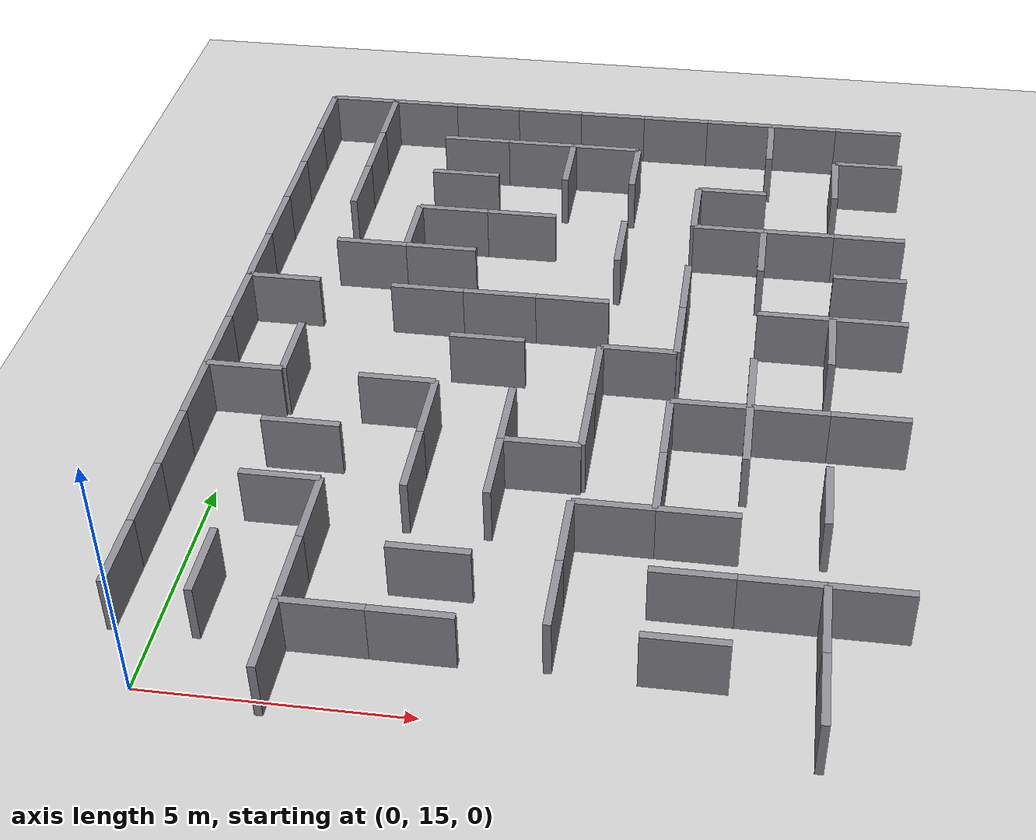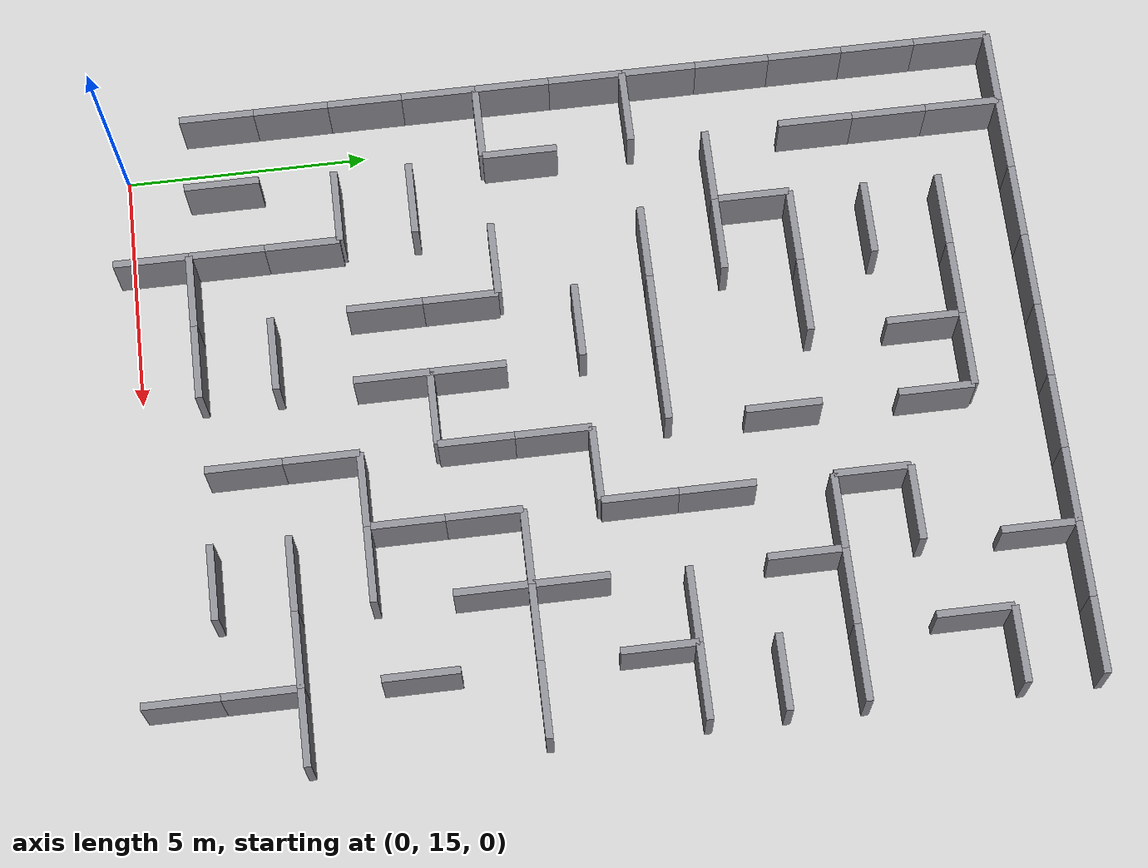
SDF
<sdf version="1.10">
 <world name="sar_maze_generated">
  <model name="ground_plane">
   <static>true</static>
   <link name="link">
    <collision name="collision">
     <geometry><plane><normal>0 0 1</normal><size>51.1 51.1</size></plane></geometry>
    </collision>
    <visual name="visual">
     <geometry><plane><normal>0 0 1</normal><size>51.1 51.1</size></plane></geometry>
     <material><ambient>0.8 0.8 0.8 1</ambient><diffuse>0.8 0.8 0.8 1</diffuse></material>
    </visual>
    <pose>16.27 16.27 0 0 0 0</pose>
    <inertial>
     <mass>1</mass>
     <inertia><ixx>1</ixx><ixy>0</ixy><ixz>0</ixz><iyy>1</iyy><iyz>0</iyz><izz>1</izz></inertia>
    </inertial>
   </link>
  </model>
  <model name="maze_structure">
   <static>true</static>
   <link name="wall_v_231">
    <static>true</static>
    <pose>2.3250 15.5000 0.6000 0 0 0</pose>
    <collision name="wall_v_231_collision">
     <geometry><box><size>0.1500 1.5500 1.2000</size></box></geometry>
    </collision>
    <visual name="wall_v_231_visual">
     <geometry><box><size>0.1500 1.5500 1.2000</size></box></geometry>
     <material><ambient>0.55 0.55 0.58 1</ambient><diffuse>0.55 0.55 0.58 1</diffuse></material>
    </visual>
   </link>
   <link name="wall_h_232">
    <static>true</static>
    <pose>3.1000 16.2750 0.6000 0 0 0</pose>
    <collision name="wall_h_232_collision">
     <geometry><box><size>1.5500 0.1500 1.2000</size></box></geometry>
    </collision>
    <visual name="wall_h_232_visual">
     <geometry><box><size>1.5500 0.1500 1.2000</size></box></geometry>
     <material><ambient>0.55 0.55 0.58 1</ambient><diffuse>0.55 0.55 0.58 1</diffuse></material>
    </visual>
   </link>
   <link name="wall_h_233">
    <static>true</static>
    <pose>4.6500 16.2750 0.6000 0 0 0</pose>
    <collision name="wall_h_233_collision">
     <geometry><box><size>1.5500 0.1500 1.2000</size></box></geometry>
    </collision>
    <visual name="wall_h_233_visual">
     <geometry><box><size>1.5500 0.1500 1.2000</size></box></geometry>
     <material><ambient>0.55 0.55 0.58 1</ambient><diffuse>0.55 0.55 0.58 1</diffuse></material>
    </visual>
   </link>
   <link name="wall_h_234">
    <static>true</static>
    <pose>9.3000 16.2750 0.6000 0 0 0</pose>
    <collision name="wall_h_234_collision">
     <geometry><box><size>1.5500 0.1500 1.2000</size></box></geometry>
    </collision>
    <visual name="wall_h_234_visual">
     <geometry><box><size>1.5500 0.1500 1.2000</size></box></geometry>
     <material><ambient>0.55 0.55 0.58 1</ambient><diffuse>0.55 0.55 0.58 1</diffuse></material>
    </visual>
   </link>
   <link name="wall_v_235">
    <static>true</static>
    <pose>11.6250 15.5000 0.6000 0 0 0</pose>
    <collision name="wall_v_235_collision">
     <geometry><box><size>0.1500 1.5500 1.2000</size></box></geometry>
    </collision>
    <visual name="wall_v_235_visual">
     <geometry><box><size>0.1500 1.5500 1.2000</size></box></geometry>
     <material><ambient>0.55 0.55 0.58 1</ambient><diffuse>0.55 0.55 0.58 1</diffuse></material>
    </visual>
   </link>
   <link name="wall_v_248">
    <static>true</static>
    <pose>0.7750 17.0500 0.6000 0 0 0</pose>
    <collision name="wall_v_248_collision">
     <geometry><box><size>0.1500 1.5500 1.2000</size></box></geometry>
    </collision>
    <visual name="wall_v_248_visual">
     <geometry><box><size>0.1500 1.5500 1.2000</size></box></geometry>
     <material><ambient>0.55 0.55 0.58 1</ambient><diffuse>0.55 0.55 0.58 1</diffuse></material>
    </visual>
   </link>
   <link name="wall_boundary_v_249">
    <static>true</static>
    <pose>-0.7750 17.0500 0.6000 0 0 0</pose>
    <collision name="wall_boundary_v_249_collision">
     <geometry><box><size>0.1500 1.5500 1.2000</size></box></geometry>
    </collision>
    <visual name="wall_boundary_v_249_visual">
     <geometry><box><size>0.1500 1.5500 1.2000</size></box></geometry>
     <material><ambient>0.55 0.55 0.58 1</ambient><diffuse>0.55 0.55 0.58 1</diffuse></material>
    </visual>
   </link>
   <link name="wall_v_250">
    <static>true</static>
    <pose>2.3250 17.0500 0.6000 0 0 0</pose>
    <collision name="wall_v_250_collision">
     <geometry><box><size>0.1500 1.5500 1.2000</size></box></geometry>
    </collision>
    <visual name="wall_v_250_visual">
     <geometry><box><size>0.1500 1.5500 1.2000</size></box></geometry>
     <material><ambient>0.55 0.55 0.58 1</ambient><diffuse>0.55 0.55 0.58 1</diffuse></material>
    </visual>
   </link>
   <link name="wall_h_251">
    <static>true</static>
    <pose>4.6500 17.8250 0.6000 0 0 0</pose>
    <collision name="wall_h_251_collision">
     <geometry><box><size>1.5500 0.1500 1.2000</size></box></geometry>
    </collision>
    <visual name="wall_h_251_visual">
     <geometry><box><size>1.5500 0.1500 1.2000</size></box></geometry>
     <material><ambient>0.55 0.55 0.58 1</ambient><diffuse>0.55 0.55 0.58 1</diffuse></material>
    </visual>
   </link>
   <link name="wall_v_252">
    <static>true</static>
    <pose>6.9750 17.0500 0.6000 0 0 0</pose>
    <collision name="wall_v_252_collision">
     <geometry><box><size>0.1500 1.5500 1.2000</size></box></geometry>
    </collision>
    <visual name="wall_v_252_visual">
     <geometry><box><size>0.1500 1.5500 1.2000</size></box></geometry>
     <material><ambient>0.55 0.55 0.58 1</ambient><diffuse>0.55 0.55 0.58 1</diffuse></material>
    </visual>
   </link>
   <link name="wall_h_253">
    <static>true</static>
    <pose>9.3000 17.8250 0.6000 0 0 0</pose>
    <collision name="wall_h_253_collision">
     <geometry><box><size>1.5500 0.1500 1.2000</size></box></geometry>
    </collision>
    <visual name="wall_h_253_visual">
     <geometry><box><size>1.5500 0.1500 1.2000</size></box></geometry>
     <material><ambient>0.55 0.55 0.58 1</ambient><diffuse>0.55 0.55 0.58 1</diffuse></material>
    </visual>
   </link>
   <link name="wall_h_254">
    <static>true</static>
    <pose>10.8500 17.8250 0.6000 0 0 0</pose>
    <collision name="wall_h_254_collision">
     <geometry><box><size>1.5500 0.1500 1.2000</size></box></geometry>
    </collision>
    <visual name="wall_h_254_visual">
     <geometry><box><size>1.5500 0.1500 1.2000</size></box></geometry>
     <material><ambient>0.55 0.55 0.58 1</ambient><diffuse>0.55 0.55 0.58 1</diffuse></material>
    </visual>
   </link>
   <link name="wall_v_255">
    <static>true</static>
    <pose>11.6250 17.0500 0.6000 0 0 0</pose>
    <collision name="wall_v_255_collision">
     <geometry><box><size>0.1500 1.5500 1.2000</size></box></geometry>
    </collision>
    <visual name="wall_v_255_visual">
     <geometry><box><size>0.1500 1.5500 1.2000</size></box></geometry>
     <material><ambient>0.55 0.55 0.58 1</ambient><diffuse>0.55 0.55 0.58 1</diffuse></material>
    </visual>
   </link>
   <link name="wall_h_256">
    <static>true</static>
    <pose>12.4000 17.8250 0.6000 0 0 0</pose>
    <collision name="wall_h_256_collision">
     <geometry><box><size>1.5500 0.1500 1.2000</size></box></geometry>
    </collision>
    <visual name="wall_h_256_visual">
     <geometry><box><size>1.5500 0.1500 1.2000</size></box></geometry>
     <material><ambient>0.55 0.55 0.58 1</ambient><diffuse>0.55 0.55 0.58 1</diffuse></material>
    </visual>
   </link>
   <link name="wall_boundary_v_266">
    <static>true</static>
    <pose>-0.7750 18.6000 0.6000 0 0 0</pose>
    <collision name="wall_boundary_v_266_collision">
     <geometry><box><size>0.1500 1.5500 1.2000</size></box></geometry>
    </collision>
    <visual name="wall_boundary_v_266_visual">
     <geometry><box><size>0.1500 1.5500 1.2000</size></box></geometry>
     <material><ambient>0.55 0.55 0.58 1</ambient><diffuse>0.55 0.55 0.58 1</diffuse></material>
    </visual>
   </link>
   <link name="wall_h_267">
    <static>true</static>
    <pose>1.5500 19.3750 0.6000 0 0 0</pose>
    <collision name="wall_h_267_collision">
     <geometry><box><size>1.5500 0.1500 1.2000</size></box></geometry>
    </collision>
    <visual name="wall_h_267_visual">
     <geometry><box><size>1.5500 0.1500 1.2000</size></box></geometry>
     <material><ambient>0.55 0.55 0.58 1</ambient><diffuse>0.55 0.55 0.58 1</diffuse></material>
    </visual>
   </link>
   <link name="wall_v_268">
    <static>true</static>
    <pose>2.3250 18.6000 0.6000 0 0 0</pose>
    <collision name="wall_v_268_collision">
     <geometry><box><size>0.1500 1.5500 1.2000</size></box></geometry>
    </collision>
    <visual name="wall_v_268_visual">
     <geometry><box><size>0.1500 1.5500 1.2000</size></box></geometry>
     <material><ambient>0.55 0.55 0.58 1</ambient><diffuse>0.55 0.55 0.58 1</diffuse></material>
    </visual>
   </link>
   <link name="wall_v_269">
    <static>true</static>
    <pose>6.9750 18.6000 0.6000 0 0 0</pose>
    <collision name="wall_v_269_collision">
     <geometry><box><size>0.1500 1.5500 1.2000</size></box></geometry>
    </collision>
    <visual name="wall_v_269_visual">
     <geometry><box><size>0.1500 1.5500 1.2000</size></box></geometry>
     <material><ambient>0.55 0.55 0.58 1</ambient><diffuse>0.55 0.55 0.58 1</diffuse></material>
    </visual>
   </link>
   <link name="wall_h_270">
    <static>true</static>
    <pose>7.7500 19.3750 0.6000 0 0 0</pose>
    <collision name="wall_h_270_collision">
     <geometry><box><size>1.5500 0.1500 1.2000</size></box></geometry>
    </collision>
    <visual name="wall_h_270_visual">
     <geometry><box><size>1.5500 0.1500 1.2000</size></box></geometry>
     <material><ambient>0.55 0.55 0.58 1</ambient><diffuse>0.55 0.55 0.58 1</diffuse></material>
    </visual>
   </link>
   <link name="wall_h_271">
    <static>true</static>
    <pose>9.3000 19.3750 0.6000 0 0 0</pose>
    <collision name="wall_h_271_collision">
     <geometry><box><size>1.5500 0.1500 1.2000</size></box></geometry>
    </collision>
    <visual name="wall_h_271_visual">
     <geometry><box><size>1.5500 0.1500 1.2000</size></box></geometry>
     <material><ambient>0.55 0.55 0.58 1</ambient><diffuse>0.55 0.55 0.58 1</diffuse></material>
    </visual>
   </link>
   <link name="wall_boundary_v_284">
    <static>true</static>
    <pose>-0.7750 20.1500 0.6000 0 0 0</pose>
    <collision name="wall_boundary_v_284_collision">
     <geometry><box><size>0.1500 1.5500 1.2000</size></box></geometry>
    </collision>
    <visual name="wall_boundary_v_284_visual">
     <geometry><box><size>0.1500 1.5500 1.2000</size></box></geometry>
     <material><ambient>0.55 0.55 0.58 1</ambient><diffuse>0.55 0.55 0.58 1</diffuse></material>
    </visual>
   </link>
   <link name="wall_h_285">
    <static>true</static>
    <pose>1.5500 20.9250 0.6000 0 0 0</pose>
    <collision name="wall_h_285_collision">
     <geometry><box><size>1.5500 0.1500 1.2000</size></box></geometry>
    </collision>
    <visual name="wall_h_285_visual">
     <geometry><box><size>1.5500 0.1500 1.2000</size></box></geometry>
     <material><ambient>0.55 0.55 0.58 1</ambient><diffuse>0.55 0.55 0.58 1</diffuse></material>
    </visual>
   </link>
   <link name="wall_v_286">
    <static>true</static>
    <pose>3.8750 20.1500 0.6000 0 0 0</pose>
    <collision name="wall_v_286_collision">
     <geometry><box><size>0.1500 1.5500 1.2000</size></box></geometry>
    </collision>
    <visual name="wall_v_286_visual">
     <geometry><box><size>0.1500 1.5500 1.2000</size></box></geometry>
     <material><ambient>0.55 0.55 0.58 1</ambient><diffuse>0.55 0.55 0.58 1</diffuse></material>
    </visual>
   </link>
   <link name="wall_v_287">
    <static>true</static>
    <pose>5.4250 20.1500 0.6000 0 0 0</pose>
    <collision name="wall_v_287_collision">
     <geometry><box><size>0.1500 1.5500 1.2000</size></box></geometry>
    </collision>
    <visual name="wall_v_287_visual">
     <geometry><box><size>0.1500 1.5500 1.2000</size></box></geometry>
     <material><ambient>0.55 0.55 0.58 1</ambient><diffuse>0.55 0.55 0.58 1</diffuse></material>
    </visual>
   </link>
   <link name="wall_h_288">
    <static>true</static>
    <pose>6.2000 20.9250 0.6000 0 0 0</pose>
    <collision name="wall_h_288_collision">
     <geometry><box><size>1.5500 0.1500 1.2000</size></box></geometry>
    </collision>
    <visual name="wall_h_288_visual">
     <geometry><box><size>1.5500 0.1500 1.2000</size></box></geometry>
     <material><ambient>0.55 0.55 0.58 1</ambient><diffuse>0.55 0.55 0.58 1</diffuse></material>
    </visual>
   </link>
   <link name="wall_v_289">
    <static>true</static>
    <pose>8.5250 20.1500 0.6000 0 0 0</pose>
    <collision name="wall_v_289_collision">
     <geometry><box><size>0.1500 1.5500 1.2000</size></box></geometry>
    </collision>
    <visual name="wall_v_289_visual">
     <geometry><box><size>0.1500 1.5500 1.2000</size></box></geometry>
     <material><ambient>0.55 0.55 0.58 1</ambient><diffuse>0.55 0.55 0.58 1</diffuse></material>
    </visual>
   </link>
   <link name="wall_v_290">
    <static>true</static>
    <pose>11.6250 20.1500 0.6000 0 0 0</pose>
    <collision name="wall_v_290_collision">
     <geometry><box><size>0.1500 1.5500 1.2000</size></box></geometry>
    </collision>
    <visual name="wall_v_290_visual">
     <geometry><box><size>0.1500 1.5500 1.2000</size></box></geometry>
     <material><ambient>0.55 0.55 0.58 1</ambient><diffuse>0.55 0.55 0.58 1</diffuse></material>
    </visual>
   </link>
   <link name="wall_h_304">
    <static>true</static>
    <pose>0.0000 22.4750 0.6000 0 0 0</pose>
    <collision name="wall_h_304_collision">
     <geometry><box><size>1.5500 0.1500 1.2000</size></box></geometry>
    </collision>
    <visual name="wall_h_304_visual">
     <geometry><box><size>1.5500 0.1500 1.2000</size></box></geometry>
     <material><ambient>0.55 0.55 0.58 1</ambient><diffuse>0.55 0.55 0.58 1</diffuse></material>
    </visual>
   </link>
   <link name="wall_boundary_v_305">
    <static>true</static>
    <pose>-0.7750 21.7000 0.6000 0 0 0</pose>
    <collision name="wall_boundary_v_305_collision">
     <geometry><box><size>0.1500 1.5500 1.2000</size></box></geometry>
    </collision>
    <visual name="wall_boundary_v_305_visual">
     <geometry><box><size>0.1500 1.5500 1.2000</size></box></geometry>
     <material><ambient>0.55 0.55 0.58 1</ambient><diffuse>0.55 0.55 0.58 1</diffuse></material>
    </visual>
   </link>
   <link name="wall_h_306">
    <static>true</static>
    <pose>3.1000 22.4750 0.6000 0 0 0</pose>
    <collision name="wall_h_306_collision">
     <geometry><box><size>1.5500 0.1500 1.2000</size></box></geometry>
    </collision>
    <visual name="wall_h_306_visual">
     <geometry><box><size>1.5500 0.1500 1.2000</size></box></geometry>
     <material><ambient>0.55 0.55 0.58 1</ambient><diffuse>0.55 0.55 0.58 1</diffuse></material>
    </visual>
   </link>
   <link name="wall_v_307">
    <static>true</static>
    <pose>3.8750 21.7000 0.6000 0 0 0</pose>
    <collision name="wall_v_307_collision">
     <geometry><box><size>0.1500 1.5500 1.2000</size></box></geometry>
    </collision>
    <visual name="wall_v_307_visual">
     <geometry><box><size>0.1500 1.5500 1.2000</size></box></geometry>
     <material><ambient>0.55 0.55 0.58 1</ambient><diffuse>0.55 0.55 0.58 1</diffuse></material>
    </visual>
   </link>
   <link name="wall_v_308">
    <static>true</static>
    <pose>5.4250 21.7000 0.6000 0 0 0</pose>
    <collision name="wall_v_308_collision">
     <geometry><box><size>0.1500 1.5500 1.2000</size></box></geometry>
    </collision>
    <visual name="wall_v_308_visual">
     <geometry><box><size>0.1500 1.5500 1.2000</size></box></geometry>
     <material><ambient>0.55 0.55 0.58 1</ambient><diffuse>0.55 0.55 0.58 1</diffuse></material>
    </visual>
   </link>
   <link name="wall_v_309">
    <static>true</static>
    <pose>6.9750 21.7000 0.6000 0 0 0</pose>
    <collision name="wall_v_309_collision">
     <geometry><box><size>0.1500 1.5500 1.2000</size></box></geometry>
    </collision>
    <visual name="wall_v_309_visual">
     <geometry><box><size>0.1500 1.5500 1.2000</size></box></geometry>
     <material><ambient>0.55 0.55 0.58 1</ambient><diffuse>0.55 0.55 0.58 1</diffuse></material>
    </visual>
   </link>
   <link name="wall_v_310">
    <static>true</static>
    <pose>8.5250 21.7000 0.6000 0 0 0</pose>
    <collision name="wall_v_310_collision">
     <geometry><box><size>0.1500 1.5500 1.2000</size></box></geometry>
    </collision>
    <visual name="wall_v_310_visual">
     <geometry><box><size>0.1500 1.5500 1.2000</size></box></geometry>
     <material><ambient>0.55 0.55 0.58 1</ambient><diffuse>0.55 0.55 0.58 1</diffuse></material>
    </visual>
   </link>
   <link name="wall_h_311">
    <static>true</static>
    <pose>9.3000 22.4750 0.6000 0 0 0</pose>
    <collision name="wall_h_311_collision">
     <geometry><box><size>1.5500 0.1500 1.2000</size></box></geometry>
    </collision>
    <visual name="wall_h_311_visual">
     <geometry><box><size>1.5500 0.1500 1.2000</size></box></geometry>
     <material><ambient>0.55 0.55 0.58 1</ambient><diffuse>0.55 0.55 0.58 1</diffuse></material>
    </visual>
   </link>
   <link name="wall_v_312">
    <static>true</static>
    <pose>10.0750 21.7000 0.6000 0 0 0</pose>
    <collision name="wall_v_312_collision">
     <geometry><box><size>0.1500 1.5500 1.2000</size></box></geometry>
    </collision>
    <visual name="wall_v_312_visual">
     <geometry><box><size>0.1500 1.5500 1.2000</size></box></geometry>
     <material><ambient>0.55 0.55 0.58 1</ambient><diffuse>0.55 0.55 0.58 1</diffuse></material>
    </visual>
   </link>
   <link name="wall_h_313">
    <static>true</static>
    <pose>10.8500 22.4750 0.6000 0 0 0</pose>
    <collision name="wall_h_313_collision">
     <geometry><box><size>1.5500 0.1500 1.2000</size></box></geometry>
    </collision>
    <visual name="wall_h_313_visual">
     <geometry><box><size>1.5500 0.1500 1.2000</size></box></geometry>
     <material><ambient>0.55 0.55 0.58 1</ambient><diffuse>0.55 0.55 0.58 1</diffuse></material>
    </visual>
   </link>
   <link name="wall_h_314">
    <static>true</static>
    <pose>12.4000 22.4750 0.6000 0 0 0</pose>
    <collision name="wall_h_314_collision">
     <geometry><box><size>1.5500 0.1500 1.2000</size></box></geometry>
    </collision>
    <visual name="wall_h_314_visual">
     <geometry><box><size>1.5500 0.1500 1.2000</size></box></geometry>
     <material><ambient>0.55 0.55 0.58 1</ambient><diffuse>0.55 0.55 0.58 1</diffuse></material>
    </visual>
   </link>
   <link name="wall_v_327">
    <static>true</static>
    <pose>0.7750 23.2500 0.6000 0 0 0</pose>
    <collision name="wall_v_327_collision">
     <geometry><box><size>0.1500 1.5500 1.2000</size></box></geometry>
    </collision>
    <visual name="wall_v_327_visual">
     <geometry><box><size>0.1500 1.5500 1.2000</size></box></geometry>
     <material><ambient>0.55 0.55 0.58 1</ambient><diffuse>0.55 0.55 0.58 1</diffuse></material>
    </visual>
   </link>
   <link name="wall_boundary_v_328">
    <static>true</static>
    <pose>-0.7750 23.2500 0.6000 0 0 0</pose>
    <collision name="wall_boundary_v_328_collision">
     <geometry><box><size>0.1500 1.5500 1.2000</size></box></geometry>
    </collision>
    <visual name="wall_boundary_v_328_visual">
     <geometry><box><size>0.1500 1.5500 1.2000</size></box></geometry>
     <material><ambient>0.55 0.55 0.58 1</ambient><diffuse>0.55 0.55 0.58 1</diffuse></material>
    </visual>
   </link>
   <link name="wall_h_329">
    <static>true</static>
    <pose>4.6500 24.0250 0.6000 0 0 0</pose>
    <collision name="wall_h_329_collision">
     <geometry><box><size>1.5500 0.1500 1.2000</size></box></geometry>
    </collision>
    <visual name="wall_h_329_visual">
     <geometry><box><size>1.5500 0.1500 1.2000</size></box></geometry>
     <material><ambient>0.55 0.55 0.58 1</ambient><diffuse>0.55 0.55 0.58 1</diffuse></material>
    </visual>
   </link>
   <link name="wall_v_330">
    <static>true</static>
    <pose>6.9750 23.2500 0.6000 0 0 0</pose>
    <collision name="wall_v_330_collision">
     <geometry><box><size>0.1500 1.5500 1.2000</size></box></geometry>
    </collision>
    <visual name="wall_v_330_visual">
     <geometry><box><size>0.1500 1.5500 1.2000</size></box></geometry>
     <material><ambient>0.55 0.55 0.58 1</ambient><diffuse>0.55 0.55 0.58 1</diffuse></material>
    </visual>
   </link>
   <link name="wall_h_331">
    <static>true</static>
    <pose>7.7500 24.0250 0.6000 0 0 0</pose>
    <collision name="wall_h_331_collision">
     <geometry><box><size>1.5500 0.1500 1.2000</size></box></geometry>
    </collision>
    <visual name="wall_h_331_visual">
     <geometry><box><size>1.5500 0.1500 1.2000</size></box></geometry>
     <material><ambient>0.55 0.55 0.58 1</ambient><diffuse>0.55 0.55 0.58 1</diffuse></material>
    </visual>
   </link>
   <link name="wall_v_332">
    <static>true</static>
    <pose>10.0750 23.2500 0.6000 0 0 0</pose>
    <collision name="wall_v_332_collision">
     <geometry><box><size>0.1500 1.5500 1.2000</size></box></geometry>
    </collision>
    <visual name="wall_v_332_visual">
     <geometry><box><size>0.1500 1.5500 1.2000</size></box></geometry>
     <material><ambient>0.55 0.55 0.58 1</ambient><diffuse>0.55 0.55 0.58 1</diffuse></material>
    </visual>
   </link>
   <link name="wall_h_343">
    <static>true</static>
    <pose>0.0000 25.5750 0.6000 0 0 0</pose>
    <collision name="wall_h_343_collision">
     <geometry><box><size>1.5500 0.1500 1.2000</size></box></geometry>
    </collision>
    <visual name="wall_h_343_visual">
     <geometry><box><size>1.5500 0.1500 1.2000</size></box></geometry>
     <material><ambient>0.55 0.55 0.58 1</ambient><diffuse>0.55 0.55 0.58 1</diffuse></material>
    </visual>
   </link>
   <link name="wall_boundary_v_344">
    <static>true</static>
    <pose>-0.7750 24.8000 0.6000 0 0 0</pose>
    <collision name="wall_boundary_v_344_collision">
     <geometry><box><size>0.1500 1.5500 1.2000</size></box></geometry>
    </collision>
    <visual name="wall_boundary_v_344_visual">
     <geometry><box><size>0.1500 1.5500 1.2000</size></box></geometry>
     <material><ambient>0.55 0.55 0.58 1</ambient><diffuse>0.55 0.55 0.58 1</diffuse></material>
    </visual>
   </link>
   <link name="wall_h_345">
    <static>true</static>
    <pose>3.1000 25.5750 0.6000 0 0 0</pose>
    <collision name="wall_h_345_collision">
     <geometry><box><size>1.5500 0.1500 1.2000</size></box></geometry>
    </collision>
    <visual name="wall_h_345_visual">
     <geometry><box><size>1.5500 0.1500 1.2000</size></box></geometry>
     <material><ambient>0.55 0.55 0.58 1</ambient><diffuse>0.55 0.55 0.58 1</diffuse></material>
    </visual>
   </link>
   <link name="wall_h_346">
    <static>true</static>
    <pose>4.6500 25.5750 0.6000 0 0 0</pose>
    <collision name="wall_h_346_collision">
     <geometry><box><size>1.5500 0.1500 1.2000</size></box></geometry>
    </collision>
    <visual name="wall_h_346_visual">
     <geometry><box><size>1.5500 0.1500 1.2000</size></box></geometry>
     <material><ambient>0.55 0.55 0.58 1</ambient><diffuse>0.55 0.55 0.58 1</diffuse></material>
    </visual>
   </link>
   <link name="wall_h_347">
    <static>true</static>
    <pose>6.2000 25.5750 0.6000 0 0 0</pose>
    <collision name="wall_h_347_collision">
     <geometry><box><size>1.5500 0.1500 1.2000</size></box></geometry>
    </collision>
    <visual name="wall_h_347_visual">
     <geometry><box><size>1.5500 0.1500 1.2000</size></box></geometry>
     <material><ambient>0.55 0.55 0.58 1</ambient><diffuse>0.55 0.55 0.58 1</diffuse></material>
    </visual>
   </link>
   <link name="wall_v_348">
    <static>true</static>
    <pose>8.5250 24.8000 0.6000 0 0 0</pose>
    <collision name="wall_v_348_collision">
     <geometry><box><size>0.1500 1.5500 1.2000</size></box></geometry>
    </collision>
    <visual name="wall_v_348_visual">
     <geometry><box><size>0.1500 1.5500 1.2000</size></box></geometry>
     <material><ambient>0.55 0.55 0.58 1</ambient><diffuse>0.55 0.55 0.58 1</diffuse></material>
    </visual>
   </link>
   <link name="wall_h_349">
    <static>true</static>
    <pose>10.8500 25.5750 0.6000 0 0 0</pose>
    <collision name="wall_h_349_collision">
     <geometry><box><size>1.5500 0.1500 1.2000</size></box></geometry>
    </collision>
    <visual name="wall_h_349_visual">
     <geometry><box><size>1.5500 0.1500 1.2000</size></box></geometry>
     <material><ambient>0.55 0.55 0.58 1</ambient><diffuse>0.55 0.55 0.58 1</diffuse></material>
    </visual>
   </link>
   <link name="wall_v_350">
    <static>true</static>
    <pose>11.6250 24.8000 0.6000 0 0 0</pose>
    <collision name="wall_v_350_collision">
     <geometry><box><size>0.1500 1.5500 1.2000</size></box></geometry>
    </collision>
    <visual name="wall_v_350_visual">
     <geometry><box><size>0.1500 1.5500 1.2000</size></box></geometry>
     <material><ambient>0.55 0.55 0.58 1</ambient><diffuse>0.55 0.55 0.58 1</diffuse></material>
    </visual>
   </link>
   <link name="wall_h_351">
    <static>true</static>
    <pose>12.4000 25.5750 0.6000 0 0 0</pose>
    <collision name="wall_h_351_collision">
     <geometry><box><size>1.5500 0.1500 1.2000</size></box></geometry>
    </collision>
    <visual name="wall_h_351_visual">
     <geometry><box><size>1.5500 0.1500 1.2000</size></box></geometry>
     <material><ambient>0.55 0.55 0.58 1</ambient><diffuse>0.55 0.55 0.58 1</diffuse></material>
    </visual>
   </link>
   <link name="wall_boundary_v_363">
    <static>true</static>
    <pose>-0.7750 26.3500 0.6000 0 0 0</pose>
    <collision name="wall_boundary_v_363_collision">
     <geometry><box><size>0.1500 1.5500 1.2000</size></box></geometry>
    </collision>
    <visual name="wall_boundary_v_363_visual">
     <geometry><box><size>0.1500 1.5500 1.2000</size></box></geometry>
     <material><ambient>0.55 0.55 0.58 1</ambient><diffuse>0.55 0.55 0.58 1</diffuse></material>
    </visual>
   </link>
   <link name="wall_h_364">
    <static>true</static>
    <pose>1.5500 27.1250 0.6000 0 0 0</pose>
    <collision name="wall_h_364_collision">
     <geometry><box><size>1.5500 0.1500 1.2000</size></box></geometry>
    </collision>
    <visual name="wall_h_364_visual">
     <geometry><box><size>1.5500 0.1500 1.2000</size></box></geometry>
     <material><ambient>0.55 0.55 0.58 1</ambient><diffuse>0.55 0.55 0.58 1</diffuse></material>
    </visual>
   </link>
   <link name="wall_h_365">
    <static>true</static>
    <pose>3.1000 27.1250 0.6000 0 0 0</pose>
    <collision name="wall_h_365_collision">
     <geometry><box><size>1.5500 0.1500 1.2000</size></box></geometry>
    </collision>
    <visual name="wall_h_365_visual">
     <geometry><box><size>1.5500 0.1500 1.2000</size></box></geometry>
     <material><ambient>0.55 0.55 0.58 1</ambient><diffuse>0.55 0.55 0.58 1</diffuse></material>
    </visual>
   </link>
   <link name="wall_v_366">
    <static>true</static>
    <pose>8.5250 26.3500 0.6000 0 0 0</pose>
    <collision name="wall_v_366_collision">
     <geometry><box><size>0.1500 1.5500 1.2000</size></box></geometry>
    </collision>
    <visual name="wall_v_366_visual">
     <geometry><box><size>0.1500 1.5500 1.2000</size></box></geometry>
     <material><ambient>0.55 0.55 0.58 1</ambient><diffuse>0.55 0.55 0.58 1</diffuse></material>
    </visual>
   </link>
   <link name="wall_h_367">
    <static>true</static>
    <pose>12.4000 27.1250 0.6000 0 0 0</pose>
    <collision name="wall_h_367_collision">
     <geometry><box><size>1.5500 0.1500 1.2000</size></box></geometry>
    </collision>
    <visual name="wall_h_367_visual">
     <geometry><box><size>1.5500 0.1500 1.2000</size></box></geometry>
     <material><ambient>0.55 0.55 0.58 1</ambient><diffuse>0.55 0.55 0.58 1</diffuse></material>
    </visual>
   </link>
   <link name="wall_boundary_v_380">
    <static>true</static>
    <pose>-0.7750 27.9000 0.6000 0 0 0</pose>
    <collision name="wall_boundary_v_380_collision">
     <geometry><box><size>0.1500 1.5500 1.2000</size></box></geometry>
    </collision>
    <visual name="wall_boundary_v_380_visual">
     <geometry><box><size>0.1500 1.5500 1.2000</size></box></geometry>
     <material><ambient>0.55 0.55 0.58 1</ambient><diffuse>0.55 0.55 0.58 1</diffuse></material>
    </visual>
   </link>
   <link name="wall_v_381">
    <static>true</static>
    <pose>2.3250 27.9000 0.6000 0 0 0</pose>
    <collision name="wall_v_381_collision">
     <geometry><box><size>0.1500 1.5500 1.2000</size></box></geometry>
    </collision>
    <visual name="wall_v_381_visual">
     <geometry><box><size>0.1500 1.5500 1.2000</size></box></geometry>
     <material><ambient>0.55 0.55 0.58 1</ambient><diffuse>0.55 0.55 0.58 1</diffuse></material>
    </visual>
   </link>
   <link name="wall_h_382">
    <static>true</static>
    <pose>3.1000 28.6750 0.6000 0 0 0</pose>
    <collision name="wall_h_382_collision">
     <geometry><box><size>1.5500 0.1500 1.2000</size></box></geometry>
    </collision>
    <visual name="wall_h_382_visual">
     <geometry><box><size>1.5500 0.1500 1.2000</size></box></geometry>
     <material><ambient>0.55 0.55 0.58 1</ambient><diffuse>0.55 0.55 0.58 1</diffuse></material>
    </visual>
   </link>
   <link name="wall_h_383">
    <static>true</static>
    <pose>4.6500 28.6750 0.6000 0 0 0</pose>
    <collision name="wall_h_383_collision">
     <geometry><box><size>1.5500 0.1500 1.2000</size></box></geometry>
    </collision>
    <visual name="wall_h_383_visual">
     <geometry><box><size>1.5500 0.1500 1.2000</size></box></geometry>
     <material><ambient>0.55 0.55 0.58 1</ambient><diffuse>0.55 0.55 0.58 1</diffuse></material>
    </visual>
   </link>
   <link name="wall_v_384">
    <static>true</static>
    <pose>6.9750 27.9000 0.6000 0 0 0</pose>
    <collision name="wall_v_384_collision">
     <geometry><box><size>0.1500 1.5500 1.2000</size></box></geometry>
    </collision>
    <visual name="wall_v_384_visual">
     <geometry><box><size>0.1500 1.5500 1.2000</size></box></geometry>
     <material><ambient>0.55 0.55 0.58 1</ambient><diffuse>0.55 0.55 0.58 1</diffuse></material>
    </visual>
   </link>
   <link name="wall_h_385">
    <static>true</static>
    <pose>9.3000 28.6750 0.6000 0 0 0</pose>
    <collision name="wall_h_385_collision">
     <geometry><box><size>1.5500 0.1500 1.2000</size></box></geometry>
    </collision>
    <visual name="wall_h_385_visual">
     <geometry><box><size>1.5500 0.1500 1.2000</size></box></geometry>
     <material><ambient>0.55 0.55 0.58 1</ambient><diffuse>0.55 0.55 0.58 1</diffuse></material>
    </visual>
   </link>
   <link name="wall_v_386">
    <static>true</static>
    <pose>10.0750 27.9000 0.6000 0 0 0</pose>
    <collision name="wall_v_386_collision">
     <geometry><box><size>0.1500 1.5500 1.2000</size></box></geometry>
    </collision>
    <visual name="wall_v_386_visual">
     <geometry><box><size>0.1500 1.5500 1.2000</size></box></geometry>
     <material><ambient>0.55 0.55 0.58 1</ambient><diffuse>0.55 0.55 0.58 1</diffuse></material>
    </visual>
   </link>
   <link name="wall_h_387">
    <static>true</static>
    <pose>10.8500 28.6750 0.6000 0 0 0</pose>
    <collision name="wall_h_387_collision">
     <geometry><box><size>1.5500 0.1500 1.2000</size></box></geometry>
    </collision>
    <visual name="wall_h_387_visual">
     <geometry><box><size>1.5500 0.1500 1.2000</size></box></geometry>
     <material><ambient>0.55 0.55 0.58 1</ambient><diffuse>0.55 0.55 0.58 1</diffuse></material>
    </visual>
   </link>
   <link name="wall_h_388">
    <static>true</static>
    <pose>12.4000 28.6750 0.6000 0 0 0</pose>
    <collision name="wall_h_388_collision">
     <geometry><box><size>1.5500 0.1500 1.2000</size></box></geometry>
    </collision>
    <visual name="wall_h_388_visual">
     <geometry><box><size>1.5500 0.1500 1.2000</size></box></geometry>
     <material><ambient>0.55 0.55 0.58 1</ambient><diffuse>0.55 0.55 0.58 1</diffuse></material>
    </visual>
   </link>
   <link name="wall_v_401">
    <static>true</static>
    <pose>0.7750 29.4500 0.6000 0 0 0</pose>
    <collision name="wall_v_401_collision">
     <geometry><box><size>0.1500 1.5500 1.2000</size></box></geometry>
    </collision>
    <visual name="wall_v_401_visual">
     <geometry><box><size>0.1500 1.5500 1.2000</size></box></geometry>
     <material><ambient>0.55 0.55 0.58 1</ambient><diffuse>0.55 0.55 0.58 1</diffuse></material>
    </visual>
   </link>
   <link name="wall_boundary_v_402">
    <static>true</static>
    <pose>-0.7750 29.4500 0.6000 0 0 0</pose>
    <collision name="wall_boundary_v_402_collision">
     <geometry><box><size>0.1500 1.5500 1.2000</size></box></geometry>
    </collision>
    <visual name="wall_boundary_v_402_visual">
     <geometry><box><size>0.1500 1.5500 1.2000</size></box></geometry>
     <material><ambient>0.55 0.55 0.58 1</ambient><diffuse>0.55 0.55 0.58 1</diffuse></material>
    </visual>
   </link>
   <link name="wall_h_403">
    <static>true</static>
    <pose>3.1000 30.2250 0.6000 0 0 0</pose>
    <collision name="wall_h_403_collision">
     <geometry><box><size>1.5500 0.1500 1.2000</size></box></geometry>
    </collision>
    <visual name="wall_h_403_visual">
     <geometry><box><size>1.5500 0.1500 1.2000</size></box></geometry>
     <material><ambient>0.55 0.55 0.58 1</ambient><diffuse>0.55 0.55 0.58 1</diffuse></material>
    </visual>
   </link>
   <link name="wall_v_404">
    <static>true</static>
    <pose>8.5250 29.4500 0.6000 0 0 0</pose>
    <collision name="wall_v_404_collision">
     <geometry><box><size>0.1500 1.5500 1.2000</size></box></geometry>
    </collision>
    <visual name="wall_v_404_visual">
     <geometry><box><size>0.1500 1.5500 1.2000</size></box></geometry>
     <material><ambient>0.55 0.55 0.58 1</ambient><diffuse>0.55 0.55 0.58 1</diffuse></material>
    </visual>
   </link>
   <link name="wall_h_405">
    <static>true</static>
    <pose>9.3000 30.2250 0.6000 0 0 0</pose>
    <collision name="wall_h_405_collision">
     <geometry><box><size>1.5500 0.1500 1.2000</size></box></geometry>
    </collision>
    <visual name="wall_h_405_visual">
     <geometry><box><size>1.5500 0.1500 1.2000</size></box></geometry>
     <material><ambient>0.55 0.55 0.58 1</ambient><diffuse>0.55 0.55 0.58 1</diffuse></material>
    </visual>
   </link>
   <link name="wall_v_418">
    <static>true</static>
    <pose>0.7750 31.0000 0.6000 0 0 0</pose>
    <collision name="wall_v_418_collision">
     <geometry><box><size>0.1500 1.5500 1.2000</size></box></geometry>
    </collision>
    <visual name="wall_v_418_visual">
     <geometry><box><size>0.1500 1.5500 1.2000</size></box></geometry>
     <material><ambient>0.55 0.55 0.58 1</ambient><diffuse>0.55 0.55 0.58 1</diffuse></material>
    </visual>
   </link>
   <link name="wall_boundary_v_419">
    <static>true</static>
    <pose>-0.7750 31.0000 0.6000 0 0 0</pose>
    <collision name="wall_boundary_v_419_collision">
     <geometry><box><size>0.1500 1.5500 1.2000</size></box></geometry>
    </collision>
    <visual name="wall_boundary_v_419_visual">
     <geometry><box><size>0.1500 1.5500 1.2000</size></box></geometry>
     <material><ambient>0.55 0.55 0.58 1</ambient><diffuse>0.55 0.55 0.58 1</diffuse></material>
    </visual>
   </link>
   <link name="wall_h_420">
    <static>true</static>
    <pose>3.1000 31.7750 0.6000 0 0 0</pose>
    <collision name="wall_h_420_collision">
     <geometry><box><size>1.5500 0.1500 1.2000</size></box></geometry>
    </collision>
    <visual name="wall_h_420_visual">
     <geometry><box><size>1.5500 0.1500 1.2000</size></box></geometry>
     <material><ambient>0.55 0.55 0.58 1</ambient><diffuse>0.55 0.55 0.58 1</diffuse></material>
    </visual>
   </link>
   <link name="wall_h_421">
    <static>true</static>
    <pose>4.6500 31.7750 0.6000 0 0 0</pose>
    <collision name="wall_h_421_collision">
     <geometry><box><size>1.5500 0.1500 1.2000</size></box></geometry>
    </collision>
    <visual name="wall_h_421_visual">
     <geometry><box><size>1.5500 0.1500 1.2000</size></box></geometry>
     <material><ambient>0.55 0.55 0.58 1</ambient><diffuse>0.55 0.55 0.58 1</diffuse></material>
    </visual>
   </link>
   <link name="wall_v_422">
    <static>true</static>
    <pose>5.4250 31.0000 0.6000 0 0 0</pose>
    <collision name="wall_v_422_collision">
     <geometry><box><size>0.1500 1.5500 1.2000</size></box></geometry>
    </collision>
    <visual name="wall_v_422_visual">
     <geometry><box><size>0.1500 1.5500 1.2000</size></box></geometry>
     <material><ambient>0.55 0.55 0.58 1</ambient><diffuse>0.55 0.55 0.58 1</diffuse></material>
    </visual>
   </link>
   <link name="wall_h_423">
    <static>true</static>
    <pose>6.2000 31.7750 0.6000 0 0 0</pose>
    <collision name="wall_h_423_collision">
     <geometry><box><size>1.5500 0.1500 1.2000</size></box></geometry>
    </collision>
    <visual name="wall_h_423_visual">
     <geometry><box><size>1.5500 0.1500 1.2000</size></box></geometry>
     <material><ambient>0.55 0.55 0.58 1</ambient><diffuse>0.55 0.55 0.58 1</diffuse></material>
    </visual>
   </link>
   <link name="wall_v_424">
    <static>true</static>
    <pose>6.9750 31.0000 0.6000 0 0 0</pose>
    <collision name="wall_v_424_collision">
     <geometry><box><size>0.1500 1.5500 1.2000</size></box></geometry>
    </collision>
    <visual name="wall_v_424_visual">
     <geometry><box><size>0.1500 1.5500 1.2000</size></box></geometry>
     <material><ambient>0.55 0.55 0.58 1</ambient><diffuse>0.55 0.55 0.58 1</diffuse></material>
    </visual>
   </link>
   <link name="wall_v_425">
    <static>true</static>
    <pose>11.6250 31.0000 0.6000 0 0 0</pose>
    <collision name="wall_v_425_collision">
     <geometry><box><size>0.1500 1.5500 1.2000</size></box></geometry>
    </collision>
    <visual name="wall_v_425_visual">
     <geometry><box><size>0.1500 1.5500 1.2000</size></box></geometry>
     <material><ambient>0.55 0.55 0.58 1</ambient><diffuse>0.55 0.55 0.58 1</diffuse></material>
    </visual>
   </link>
   <link name="wall_h_426">
    <static>true</static>
    <pose>12.4000 31.7750 0.6000 0 0 0</pose>
    <collision name="wall_h_426_collision">
     <geometry><box><size>1.5500 0.1500 1.2000</size></box></geometry>
    </collision>
    <visual name="wall_h_426_visual">
     <geometry><box><size>1.5500 0.1500 1.2000</size></box></geometry>
     <material><ambient>0.55 0.55 0.58 1</ambient><diffuse>0.55 0.55 0.58 1</diffuse></material>
    </visual>
   </link>
   <link name="wall_boundary_h_440">
    <static>true</static>
    <pose>0.0000 33.3250 0.6000 0 0 0</pose>
    <collision name="wall_boundary_h_440_collision">
     <geometry><box><size>1.5500 0.1500 1.2000</size></box></geometry>
    </collision>
    <visual name="wall_boundary_h_440_visual">
     <geometry><box><size>1.5500 0.1500 1.2000</size></box></geometry>
     <material><ambient>0.55 0.55 0.58 1</ambient><diffuse>0.55 0.55 0.58 1</diffuse></material>
    </visual>
   </link>
   <link name="wall_v_441">
    <static>true</static>
    <pose>0.7750 32.5500 0.6000 0 0 0</pose>
    <collision name="wall_v_441_collision">
     <geometry><box><size>0.1500 1.5500 1.2000</size></box></geometry>
    </collision>
    <visual name="wall_v_441_visual">
     <geometry><box><size>0.1500 1.5500 1.2000</size></box></geometry>
     <material><ambient>0.55 0.55 0.58 1</ambient><diffuse>0.55 0.55 0.58 1</diffuse></material>
    </visual>
   </link>
   <link name="wall_boundary_v_442">
    <static>true</static>
    <pose>-0.7750 32.5500 0.6000 0 0 0</pose>
    <collision name="wall_boundary_v_442_collision">
     <geometry><box><size>0.1500 1.5500 1.2000</size></box></geometry>
    </collision>
    <visual name="wall_boundary_v_442_visual">
     <geometry><box><size>0.1500 1.5500 1.2000</size></box></geometry>
     <material><ambient>0.55 0.55 0.58 1</ambient><diffuse>0.55 0.55 0.58 1</diffuse></material>
    </visual>
   </link>
   <link name="wall_boundary_h_443">
    <static>true</static>
    <pose>1.5500 33.3250 0.6000 0 0 0</pose>
    <collision name="wall_boundary_h_443_collision">
     <geometry><box><size>1.5500 0.1500 1.2000</size></box></geometry>
    </collision>
    <visual name="wall_boundary_h_443_visual">
     <geometry><box><size>1.5500 0.1500 1.2000</size></box></geometry>
     <material><ambient>0.55 0.55 0.58 1</ambient><diffuse>0.55 0.55 0.58 1</diffuse></material>
    </visual>
   </link>
   <link name="wall_boundary_h_444">
    <static>true</static>
    <pose>3.1000 33.3250 0.6000 0 0 0</pose>
    <collision name="wall_boundary_h_444_collision">
     <geometry><box><size>1.5500 0.1500 1.2000</size></box></geometry>
    </collision>
    <visual name="wall_boundary_h_444_visual">
     <geometry><box><size>1.5500 0.1500 1.2000</size></box></geometry>
     <material><ambient>0.55 0.55 0.58 1</ambient><diffuse>0.55 0.55 0.58 1</diffuse></material>
    </visual>
   </link>
   <link name="wall_boundary_h_445">
    <static>true</static>
    <pose>4.6500 33.3250 0.6000 0 0 0</pose>
    <collision name="wall_boundary_h_445_collision">
     <geometry><box><size>1.5500 0.1500 1.2000</size></box></geometry>
    </collision>
    <visual name="wall_boundary_h_445_visual">
     <geometry><box><size>1.5500 0.1500 1.2000</size></box></geometry>
     <material><ambient>0.55 0.55 0.58 1</ambient><diffuse>0.55 0.55 0.58 1</diffuse></material>
    </visual>
   </link>
   <link name="wall_boundary_h_446">
    <static>true</static>
    <pose>6.2000 33.3250 0.6000 0 0 0</pose>
    <collision name="wall_boundary_h_446_collision">
     <geometry><box><size>1.5500 0.1500 1.2000</size></box></geometry>
    </collision>
    <visual name="wall_boundary_h_446_visual">
     <geometry><box><size>1.5500 0.1500 1.2000</size></box></geometry>
     <material><ambient>0.55 0.55 0.58 1</ambient><diffuse>0.55 0.55 0.58 1</diffuse></material>
    </visual>
   </link>
   <link name="wall_boundary_h_447">
    <static>true</static>
    <pose>7.7500 33.3250 0.6000 0 0 0</pose>
    <collision name="wall_boundary_h_447_collision">
     <geometry><box><size>1.5500 0.1500 1.2000</size></box></geometry>
    </collision>
    <visual name="wall_boundary_h_447_visual">
     <geometry><box><size>1.5500 0.1500 1.2000</size></box></geometry>
     <material><ambient>0.55 0.55 0.58 1</ambient><diffuse>0.55 0.55 0.58 1</diffuse></material>
    </visual>
   </link>
   <link name="wall_boundary_h_448">
    <static>true</static>
    <pose>9.3000 33.3250 0.6000 0 0 0</pose>
    <collision name="wall_boundary_h_448_collision">
     <geometry><box><size>1.5500 0.1500 1.2000</size></box></geometry>
    </collision>
    <visual name="wall_boundary_h_448_visual">
     <geometry><box><size>1.5500 0.1500 1.2000</size></box></geometry>
     <material><ambient>0.55 0.55 0.58 1</ambient><diffuse>0.55 0.55 0.58 1</diffuse></material>
    </visual>
   </link>
   <link name="wall_v_449">
    <static>true</static>
    <pose>10.0750 32.5500 0.6000 0 0 0</pose>
    <collision name="wall_v_449_collision">
     <geometry><box><size>0.1500 1.5500 1.2000</size></box></geometry>
    </collision>
    <visual name="wall_v_449_visual">
     <geometry><box><size>0.1500 1.5500 1.2000</size></box></geometry>
     <material><ambient>0.55 0.55 0.58 1</ambient><diffuse>0.55 0.55 0.58 1</diffuse></material>
    </visual>
   </link>
   <link name="wall_boundary_h_450">
    <static>true</static>
    <pose>10.8500 33.3250 0.6000 0 0 0</pose>
    <collision name="wall_boundary_h_450_collision">
     <geometry><box><size>1.5500 0.1500 1.2000</size></box></geometry>
    </collision>
    <visual name="wall_boundary_h_450_visual">
     <geometry><box><size>1.5500 0.1500 1.2000</size></box></geometry>
     <material><ambient>0.55 0.55 0.58 1</ambient><diffuse>0.55 0.55 0.58 1</diffuse></material>
    </visual>
   </link>
   <link name="wall_boundary_h_451">
    <static>true</static>
    <pose>12.4000 33.3250 0.6000 0 0 0</pose>
    <collision name="wall_boundary_h_451_collision">
     <geometry><box><size>1.5500 0.1500 1.2000</size></box></geometry>
    </collision>
    <visual name="wall_boundary_h_451_visual">
     <geometry><box><size>1.5500 0.1500 1.2000</size></box></geometry>
     <material><ambient>0.55 0.55 0.58 1</ambient><diffuse>0.55 0.55 0.58 1</diffuse></material>
    </visual>
   </link>
  </model>
 </world>
</sdf>
